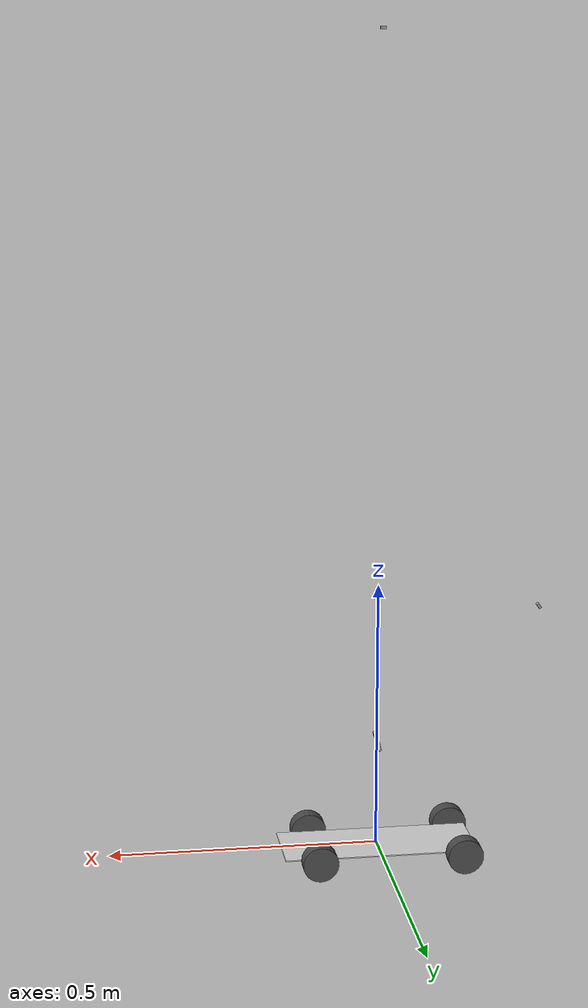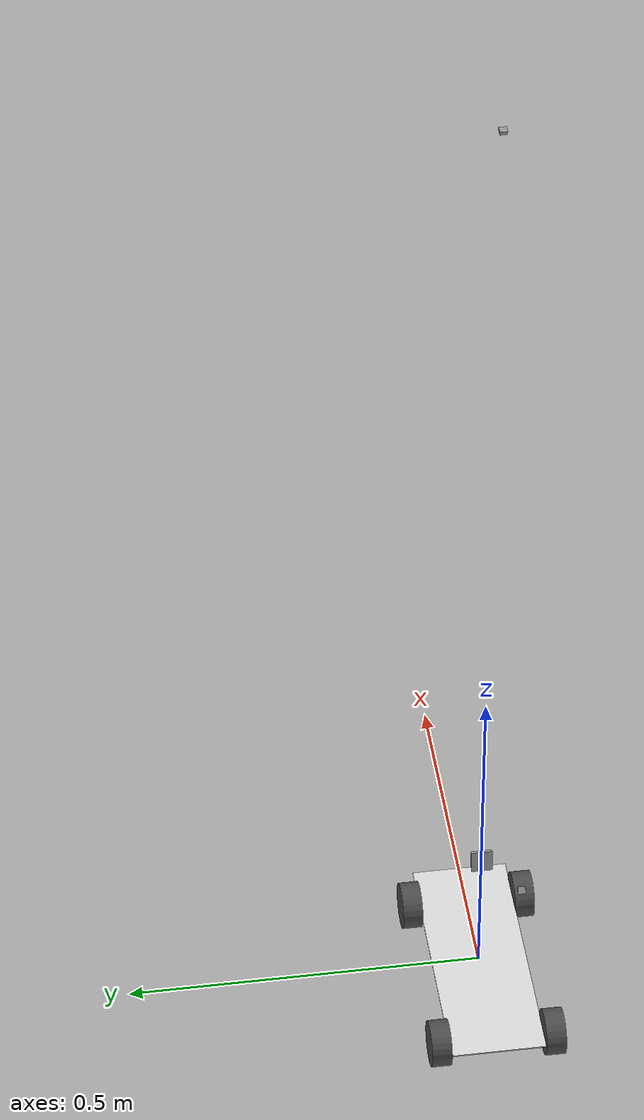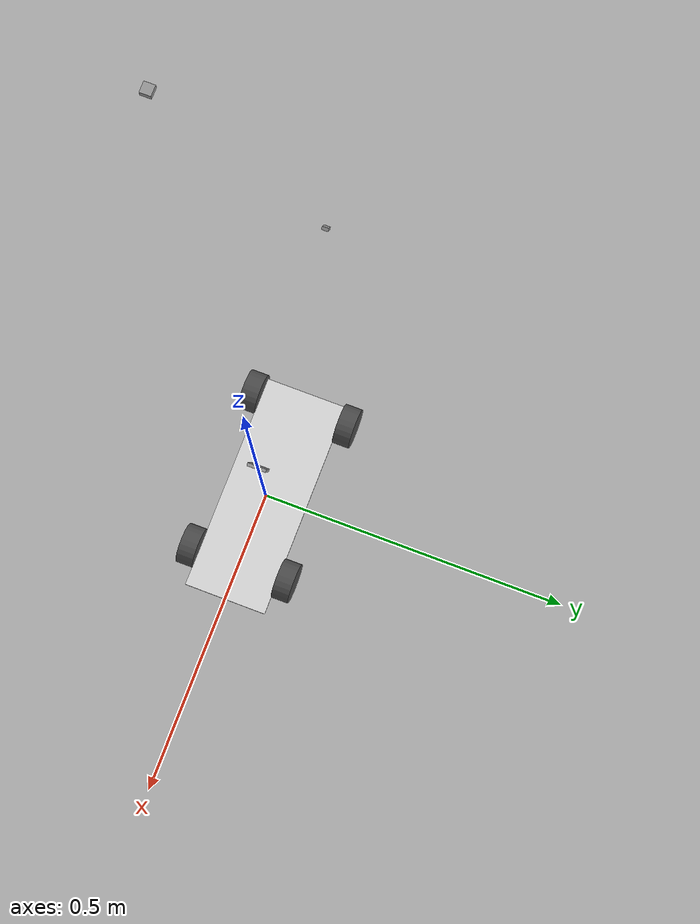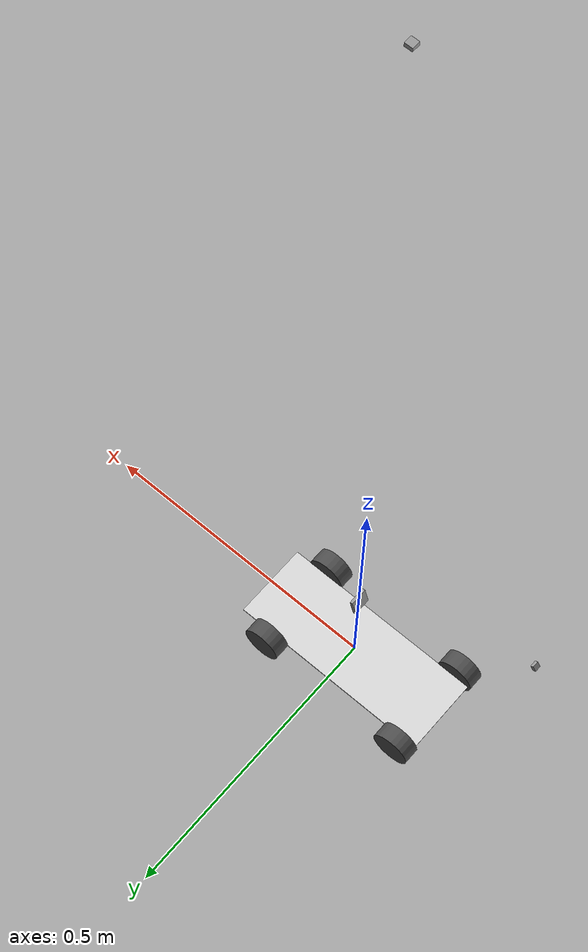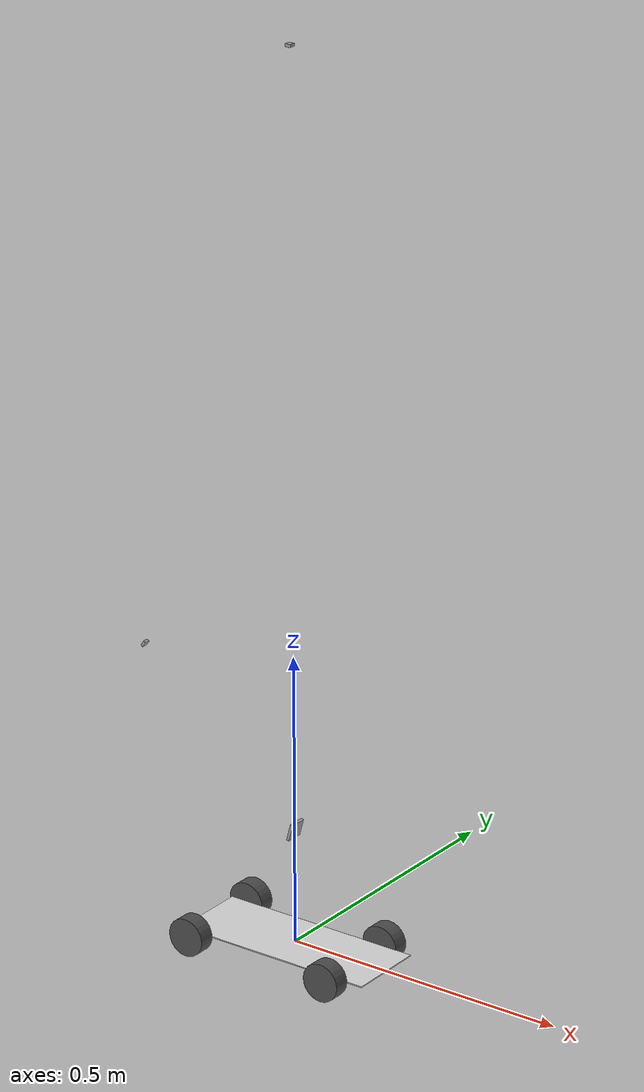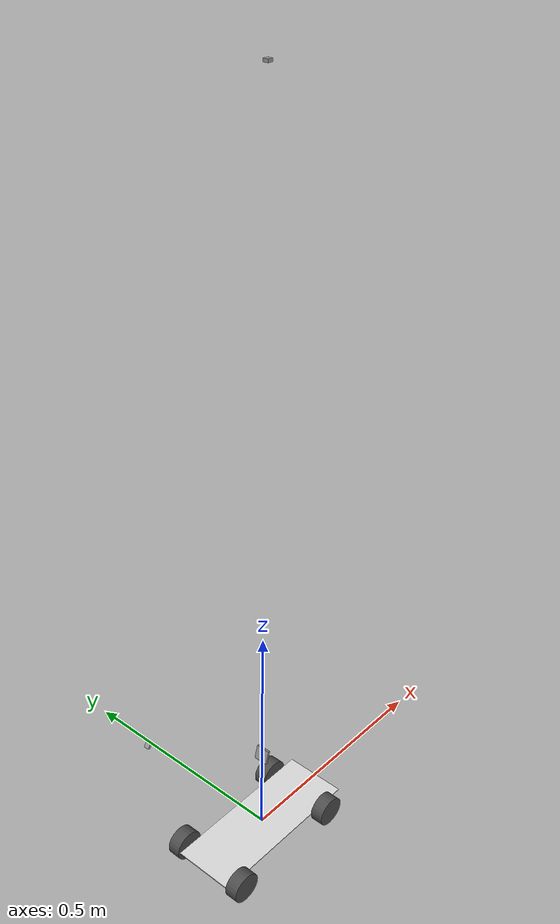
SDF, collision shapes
<?xml version='1.0'?>
<sdf version='1.7'>
  <model name='automobile'>
    <link name='chassis::link'>
      <inertial>
        <mass>0.26244</mass>
        <inertia>
          <ixx>0.00283444</ixx>
          <ixy>0</ixy>
          <ixz>0</ixz>
          <iyy>0.00039867</iyy>
          <iyz>0</iyz>
          <izz>0.00323293</izz>
        </inertia>
        <pose>0 0 0 0 -0 0</pose>
      </inertial>
      <pose>0 0 0 0 -0 1.5708</pose>
      <gravity>1</gravity>
      <kinematic>0</kinematic>
      <enable_wind>0</enable_wind>
      <self_collide>0</self_collide>
      <visual name='visual'>
        <pose>0 0 -0.0065 0 0 -1.57079</pose>
        <geometry>
          <mesh>
            <uri>model://chassis/meshes/chassisV5.dae</uri>
            <scale>1 1 1</scale>
          </mesh>
        </geometry>
        <material>
          <lighting>1</lighting>
          <shader type='vertex'>
            <normal_map>__default__</normal_map>
          </shader>
          <ambient>0.6 0.6 0.6 1</ambient>
          <diffuse>0.85 0.85 0.85 1</diffuse>
          <specular>0.6 0.6 0.6 1</specular>
          <emissive>0 0 0 1</emissive>
          <script>
            <name>ModelPreview_4::chassis::link::visual_MATERIAL_</name>
            <uri>__default__</uri>
          </script>
        </material>
        <transparency>0</transparency>
        <cast_shadows>1</cast_shadows>
      </visual>
      <collision name='collision'>
        <laser_retro>0</laser_retro>
        <max_contacts>10</max_contacts>
        <pose>0 0 0 0 -0 0</pose>
        <geometry>
          <box>
            <size>0.135 0.36 0.002</size>
          </box>
        </geometry>
        <surface>
          <friction>
            <ode>
              <mu>1</mu>
              <mu2>1</mu2>
              <fdir1>0 0 0</fdir1>
              <slip1>0</slip1>
              <slip2>0</slip2>
            </ode>
            <torsional>
              <coefficient>1</coefficient>
              <patch_radius>0</patch_radius>
              <surface_radius>0</surface_radius>
              <use_patch_radius>1</use_patch_radius>
              <ode>
                <slip>0</slip>
              </ode>
            </torsional>
          </friction>
          <bounce>
            <restitution_coefficient>0</restitution_coefficient>
            <threshold>1e+06</threshold>
          </bounce>
          <contact>
            <collide_without_contact>0</collide_without_contact>
            <collide_without_contact_bitmask>1</collide_without_contact_bitmask>
            <collide_bitmask>1</collide_bitmask>
            <ode>
              <soft_cfm>0</soft_cfm>
              <soft_erp>0.2</soft_erp>
              <kp>1e+13</kp>
              <kd>1</kd>
              <max_vel>0.01</max_vel>
              <min_depth>0</min_depth>
            </ode>
            <bullet>
              <split_impulse>1</split_impulse>
              <split_impulse_penetration_threshold>-0.01</split_impulse_penetration_threshold>
              <soft_cfm>0</soft_cfm>
              <soft_erp>0.2</soft_erp>
              <kp>1e+13</kp>
              <kd>1</kd>
            </bullet>
          </contact>
        </surface>
      </collision>
    </link>
    <link name='cam_birdeye_REC::link_camera'>
      <inertial>
        <mass>0.001</mass>
        <inertia>
          <ixx>4.1e-07</ixx>
          <ixy>0</ixy>
          <ixz>0</ixz>
          <iyy>7.9e-07</iyy>
          <iyz>0</iyz>
          <izz>4.1e-07</izz>
        </inertia>
        <pose>0 0 0 0 -0 0</pose>
      </inertial>
      <pose>0 0 1.5 0 1.57079 0</pose>
      <gravity>1</gravity>
      <self_collide>0</self_collide>
      <kinematic>0</kinematic>
      <enable_wind>0</enable_wind>
      <sensor name='camera1' type='camera'>
        <update_rate>30</update_rate>
        <camera name='head'>
          <horizontal_fov>2</horizontal_fov>
          <image>
            <width>640</width>
            <height>480</height>
            <format>R8G8B8</format>
          </image>
          <clip>
            <near>0.02</near>
            <far>100</far>
          </clip>
          <noise>
            <type>gaussian</type>
            <mean>0</mean>
            <stddev>0</stddev>
          </noise>
        </camera>
        <plugin name='camera_controller' filename='libgazebo_ros_camera.so'>
          <alwaysOn>1</alwaysOn>
          <updateRate>0.0</updateRate>
          <cameraName>/rcCar/camera_birdeye</cameraName>
          <imageTopicName>image_raw</imageTopicName>
          <cameraInfoTopicName>camera_info</cameraInfoTopicName>
          <frameName>cam_birdeye_REC::link_camera</frameName>
          <hackBaseline>0.0</hackBaseline>
          <distortionK1>0.0</distortionK1>
          <distortionK2>0.0</distortionK2>
          <distortionK3>0.0</distortionK3>
          <distortionT1>0.0</distortionT1>
          <distortionT2>0.0</distortionT2>
          <robotNamespace/>
        </plugin>
      </sensor>
      <visual name='visual'>
        <pose>0 0 0 0 -0 0</pose>
        <geometry>
          <box>
            <size>0.005 0.01 0.01</size>
          </box>
        </geometry>
        <material>
          <lighting>1</lighting>
          <script>
            <uri>file://media/materials/scripts/gazebo.material</uri>
            <name>Gazebo/Grey</name>
          </script>
          <shader type='vertex'>
            <normal_map>__default__</normal_map>
          </shader>
          <ambient>0.3 0.3 0.3 1</ambient>
          <diffuse>0.7 0.7 0.7 1</diffuse>
          <specular>0.01 0.01 0.01 1</specular>
          <emissive>0 0 0 1</emissive>
        </material>
        <transparency>0</transparency>
        <cast_shadows>1</cast_shadows>
      </visual>
      <collision name='collision'>
        <laser_retro>0</laser_retro>
        <max_contacts>10</max_contacts>
        <pose>0 0 0 0 -0 0</pose>
        <geometry>
          <box>
            <size>0.005 0.01 0.01</size>
          </box>
        </geometry>
        <surface>
          <friction>
            <ode>
              <mu>1</mu>
              <mu2>1</mu2>
              <fdir1>0 0 0</fdir1>
              <slip1>0</slip1>
              <slip2>0</slip2>
            </ode>
            <torsional>
              <coefficient>1</coefficient>
              <patch_radius>0</patch_radius>
              <surface_radius>0</surface_radius>
              <use_patch_radius>1</use_patch_radius>
              <ode>
                <slip>0</slip>
              </ode>
            </torsional>
          </friction>
          <bounce>
            <restitution_coefficient>0</restitution_coefficient>
            <threshold>1e+06</threshold>
          </bounce>
          <contact>
            <collide_without_contact>0</collide_without_contact>
            <collide_without_contact_bitmask>1</collide_without_contact_bitmask>
            <collide_bitmask>1</collide_bitmask>
            <ode>
              <soft_cfm>0</soft_cfm>
              <soft_erp>0.2</soft_erp>
              <kp>1e+13</kp>
              <kd>1</kd>
              <max_vel>0.01</max_vel>
              <min_depth>0</min_depth>
            </ode>
            <bullet>
              <split_impulse>1</split_impulse>
              <split_impulse_penetration_threshold>-0.01</split_impulse_penetration_threshold>
              <soft_cfm>0</soft_cfm>
              <soft_erp>0.2</soft_erp>
              <kp>1e+13</kp>
              <kd>1</kd>
            </bullet>
          </contact>
        </surface>
      </collision>
    </link>
    <link name='camera::link_camera'>
      <inertial>
        <mass>0.0052875</mass>
        <inertia>
          <ixx>4.1e-07</ixx>
          <ixy>0</ixy>
          <ixz>0</ixz>
          <iyy>7.9e-07</iyy>
          <iyz>0</iyz>
          <izz>4.1e-07</izz>
        </inertia>
        <pose>0 0 0 0 -0 0</pose>
      </inertial>
      <pose>0 0 0.2 0 0.2617 0</pose>
      <gravity>1</gravity>
      <self_collide>0</self_collide>
      <kinematic>0</kinematic>
      <enable_wind>0</enable_wind>
      <sensor name='camera1' type='camera'>
        <update_rate>30</update_rate>
        <camera name='head'>
          <horizontal_fov>1.08559</horizontal_fov>
          <image>
            <width>640</width>
            <height>480</height>
            <format>R8G8B8</format>
          </image>
          <clip>
            <near>0.02</near>
            <far>100</far>
          </clip>
          <noise>
            <type>gaussian</type>
            <mean>0</mean>
            <stddev>0</stddev>
          </noise>
        </camera>
        <plugin name='camera_controller' filename='libgazebo_ros_camera.so'>
          <alwaysOn>1</alwaysOn>
          <updateRate>0.0</updateRate>
          <imageTopicName>image_raw</imageTopicName>
          <cameraInfoTopicName>camera_info</cameraInfoTopicName>
          <frameName>camera::link_camera</frameName>
          <hackBaseline>0.0</hackBaseline>
          <distortionK1>0.0</distortionK1>
          <distortionK2>0.0</distortionK2>
          <distortionK3>0.0</distortionK3>
          <distortionT1>0.0</distortionT1>
          <distortionT2>0.0</distortionT2>
          <robotNamespace/>
        </plugin>
      </sensor>
      <visual name='visual'>
        <pose>0 0 0 0 -0 0</pose>
        <geometry>
          <box>
            <size>0.005 0.03 0.03</size>
          </box>
        </geometry>
        <material>
          <lighting>1</lighting>
          <script>
            <uri>file://media/materials/scripts/gazebo.material</uri>
            <name>Gazebo/Grey</name>
          </script>
          <shader type='vertex'>
            <normal_map>__default__</normal_map>
          </shader>
          <ambient>0.3 0.3 0.3 1</ambient>
          <diffuse>0.7 0.7 0.7 1</diffuse>
          <specular>0.01 0.01 0.01 1</specular>
          <emissive>0 0 0 1</emissive>
        </material>
        <transparency>0</transparency>
        <cast_shadows>1</cast_shadows>
      </visual>
      <collision name='collision'>
        <laser_retro>0</laser_retro>
        <max_contacts>10</max_contacts>
        <pose>0 0 0 0 -0 0</pose>
        <geometry>
          <box>
            <size>0.005 0.03 0.03</size>
          </box>
        </geometry>
        <surface>
          <friction>
            <ode>
              <mu>1</mu>
              <mu2>1</mu2>
              <fdir1>0 0 0</fdir1>
              <slip1>0</slip1>
              <slip2>0</slip2>
            </ode>
            <torsional>
              <coefficient>1</coefficient>
              <patch_radius>0</patch_radius>
              <surface_radius>0</surface_radius>
              <use_patch_radius>1</use_patch_radius>
              <ode>
                <slip>0</slip>
              </ode>
            </torsional>
          </friction>
          <bounce>
            <restitution_coefficient>0</restitution_coefficient>
            <threshold>1e+06</threshold>
          </bounce>
          <contact>
            <collide_without_contact>0</collide_without_contact>
            <collide_without_contact_bitmask>1</collide_without_contact_bitmask>
            <collide_bitmask>1</collide_bitmask>
            <ode>
              <soft_cfm>0</soft_cfm>
              <soft_erp>0.2</soft_erp>
              <kp>1e+13</kp>
              <kd>1</kd>
              <max_vel>0.01</max_vel>
              <min_depth>0</min_depth>
            </ode>
            <bullet>
              <split_impulse>1</split_impulse>
              <split_impulse_penetration_threshold>-0.01</split_impulse_penetration_threshold>
              <soft_cfm>0</soft_cfm>
              <soft_erp>0.2</soft_erp>
              <kp>1e+13</kp>
              <kd>1</kd>
            </bullet>
          </contact>
        </surface>
      </collision>
    </link>
    <link name='camera_follow::link_camera'>
      <inertial>
        <mass>0.001</mass>
        <inertia>
          <ixx>4.1e-07</ixx>
          <ixy>0</ixy>
          <ixz>0</ixz>
          <iyy>7.9e-07</iyy>
          <iyz>0</iyz>
          <izz>4.1e-07</izz>
        </inertia>
        <pose>0 0 0 0 -0 0</pose>
      </inertial>
      <pose>-0.3 0 0.45 0 0.6 0</pose>
      <gravity>1</gravity>
      <self_collide>0</self_collide>
      <kinematic>0</kinematic>
      <enable_wind>0</enable_wind>
      <sensor name='camera1' type='camera'>
        <update_rate>30</update_rate>
        <camera name='head'>
          <horizontal_fov>1.3708</horizontal_fov>
          <image>
            <width>1920</width>
            <height>1080</height>
            <format>R8G8B8</format>
          </image>
          <clip>
            <near>0.02</near>
            <far>100</far>
          </clip>
          <noise>
            <type>gaussian</type>
            <mean>0</mean>
            <stddev>0</stddev>
          </noise>
        </camera>
        <plugin name='camera_controller' filename='libgazebo_ros_camera.so'>
          <alwaysOn>1</alwaysOn>
          <updateRate>0.0</updateRate>
          <cameraName>/rcCar/camera_follow</cameraName>
          <imageTopicName>image_raw</imageTopicName>
          <cameraInfoTopicName>camera_info</cameraInfoTopicName>
          <frameName>camera_follow::link_camera</frameName>
          <hackBaseline>0.0</hackBaseline>
          <distortionK1>0.0</distortionK1>
          <distortionK2>0.0</distortionK2>
          <distortionK3>0.0</distortionK3>
          <distortionT1>0.0</distortionT1>
          <distortionT2>0.0</distortionT2>
          <robotNamespace/>
        </plugin>
      </sensor>
      <visual name='visual'>
        <pose>0 0 0 0 -0 0</pose>
        <geometry>
          <box>
            <size>0.005 0.01 0.01</size>
          </box>
        </geometry>
        <material>
          <lighting>1</lighting>
          <script>
            <uri>file://media/materials/scripts/gazebo.material</uri>
            <name>Gazebo/Grey</name>
          </script>
          <shader type='vertex'>
            <normal_map>__default__</normal_map>
          </shader>
          <ambient>0.3 0.3 0.3 1</ambient>
          <diffuse>0.7 0.7 0.7 1</diffuse>
          <specular>0.01 0.01 0.01 1</specular>
          <emissive>0 0 0 1</emissive>
        </material>
        <transparency>0</transparency>
        <cast_shadows>1</cast_shadows>
      </visual>
      <collision name='collision'>
        <laser_retro>0</laser_retro>
        <max_contacts>10</max_contacts>
        <pose>0 0 0 0 -0 0</pose>
        <geometry>
          <box>
            <size>0.005 0.01 0.01</size>
          </box>
        </geometry>
        <surface>
          <friction>
            <ode>
              <mu>1</mu>
              <mu2>1</mu2>
              <fdir1>0 0 0</fdir1>
              <slip1>0</slip1>
              <slip2>0</slip2>
            </ode>
            <torsional>
              <coefficient>1</coefficient>
              <patch_radius>0</patch_radius>
              <surface_radius>0</surface_radius>
              <use_patch_radius>1</use_patch_radius>
              <ode>
                <slip>0</slip>
              </ode>
            </torsional>
          </friction>
          <bounce>
            <restitution_coefficient>0</restitution_coefficient>
            <threshold>1e+06</threshold>
          </bounce>
          <contact>
            <collide_without_contact>0</collide_without_contact>
            <collide_without_contact_bitmask>1</collide_without_contact_bitmask>
            <collide_bitmask>1</collide_bitmask>
            <ode>
              <soft_cfm>0</soft_cfm>
              <soft_erp>0.2</soft_erp>
              <kp>1e+13</kp>
              <kd>1</kd>
              <max_vel>0.01</max_vel>
              <min_depth>0</min_depth>
            </ode>
            <bullet>
              <split_impulse>1</split_impulse>
              <split_impulse_penetration_threshold>-0.01</split_impulse_penetration_threshold>
              <soft_cfm>0</soft_cfm>
              <soft_erp>0.2</soft_erp>
              <kp>1e+13</kp>
              <kd>1</kd>
            </bullet>
          </contact>
        </surface>
      </collision>
    </link>
    <link name='car_body::link'>
      <inertial>
        <mass>1</mass>
        <inertia>
          <ixx>0.166667</ixx>
          <ixy>0</ixy>
          <ixz>0</ixz>
          <iyy>0.166667</iyy>
          <iyz>0</iyz>
          <izz>0.166667</izz>
        </inertia>
        <pose>0 0 0 0 -0 0</pose>
      </inertial>
      <pose>-0.024 0 -0.028 0 -0 0</pose>
      <self_collide>0</self_collide>
      <enable_wind>0</enable_wind>
      <kinematic>0</kinematic>
      <visual name='visual'>
        <pose>0 0 0 0 -0 0</pose>
        <geometry>
          <mesh>
            <uri>model://car_body/meshes/CarBody.dae</uri>
            <scale>1 1 1</scale>
          </mesh>
        </geometry>
        <material>
          <script>
            <uri>model://car_body/materials/scripts</uri>
            <uri>model://car_body/materials/textures</uri>
            <name>CarBody/Image</name>
          </script>
          <shader type='pixel'/>
        </material>
        <transparency>0</transparency>
        <cast_shadows>1</cast_shadows>
      </visual>
    </link>
    <link name='steer_left::link_steer'>
      <inertial>
        <mass>0.001</mass>
        <inertia>
          <ixx>0.00014583</ixx>
          <ixy>0</ixy>
          <ixz>0</ixz>
          <iyy>0.00014583</iyy>
          <iyz>0</iyz>
          <izz>0.000125</izz>
        </inertia>
        <pose>0 0 0 0 -0 0</pose>
      </inertial>
      <pose>0.112 0.0725 0 1.5708 -0 0</pose>
      <gravity>1</gravity>
      <self_collide>0</self_collide>
      <kinematic>0</kinematic>
      <enable_wind>0</enable_wind>
      <visual name='visual'>
        <pose>0 0 0 0 -0 0</pose>
        <geometry>
          <cylinder>
            <radius>0.001</radius>
            <length>0.01</length>
          </cylinder>
        </geometry>
        <material>
          <lighting>1</lighting>
          <script>
            <uri>file://media/materials/scripts/gazebo.material</uri>
            <name>Gazebo/Grey</name>
          </script>
          <shader type='vertex'>
            <normal_map>__default__</normal_map>
          </shader>
          <ambient>0.3 0.3 0.3 1</ambient>
          <diffuse>0.7 0.7 0.7 1</diffuse>
          <specular>0.01 0.01 0.01 1</specular>
          <emissive>0 0 0 1</emissive>
        </material>
        <transparency>0</transparency>
        <cast_shadows>1</cast_shadows>
      </visual>
      <collision name='collision'>
        <laser_retro>0</laser_retro>
        <max_contacts>10</max_contacts>
        <pose>0 0 0 0 -0 0</pose>
        <geometry>
          <cylinder>
            <radius>0.001</radius>
            <length>0.01</length>
          </cylinder>
        </geometry>
        <surface>
          <friction>
            <ode>
              <mu>1</mu>
              <mu2>1</mu2>
              <fdir1>0 0 0</fdir1>
              <slip1>0</slip1>
              <slip2>0</slip2>
            </ode>
            <torsional>
              <coefficient>1</coefficient>
              <patch_radius>0</patch_radius>
              <surface_radius>0</surface_radius>
              <use_patch_radius>1</use_patch_radius>
              <ode>
                <slip>0</slip>
              </ode>
            </torsional>
          </friction>
          <bounce>
            <restitution_coefficient>0</restitution_coefficient>
            <threshold>1e+06</threshold>
          </bounce>
          <contact>
            <collide_without_contact>0</collide_without_contact>
            <collide_without_contact_bitmask>1</collide_without_contact_bitmask>
            <collide_bitmask>1</collide_bitmask>
            <ode>
              <soft_cfm>0</soft_cfm>
              <soft_erp>0.2</soft_erp>
              <kp>1e+13</kp>
              <kd>1</kd>
              <max_vel>0.01</max_vel>
              <min_depth>0</min_depth>
            </ode>
            <bullet>
              <split_impulse>1</split_impulse>
              <split_impulse_penetration_threshold>-0.01</split_impulse_penetration_threshold>
              <soft_cfm>0</soft_cfm>
              <soft_erp>0.2</soft_erp>
              <kp>1e+13</kp>
              <kd>1</kd>
            </bullet>
          </contact>
        </surface>
      </collision>
    </link>
    <link name='steer_right::link_steer'>
      <inertial>
        <mass>0.001</mass>
        <inertia>
          <ixx>0.00014583</ixx>
          <ixy>0</ixy>
          <ixz>0</ixz>
          <iyy>0.00014583</iyy>
          <iyz>0</iyz>
          <izz>0.000125</izz>
        </inertia>
        <pose>0 0 0 0 -0 0</pose>
      </inertial>
      <pose>0.112 -0.0725 0 1.5708 -0 0</pose>
      <gravity>1</gravity>
      <self_collide>0</self_collide>
      <kinematic>0</kinematic>
      <enable_wind>0</enable_wind>
      <visual name='visual'>
        <pose>0 0 0 0 -0 0</pose>
        <geometry>
          <cylinder>
            <radius>0.001</radius>
            <length>0.01</length>
          </cylinder>
        </geometry>
        <material>
          <lighting>1</lighting>
          <script>
            <uri>file://media/materials/scripts/gazebo.material</uri>
            <name>Gazebo/Grey</name>
          </script>
          <shader type='vertex'>
            <normal_map>__default__</normal_map>
          </shader>
          <ambient>0.3 0.3 0.3 1</ambient>
          <diffuse>0.7 0.7 0.7 1</diffuse>
          <specular>0.01 0.01 0.01 1</specular>
          <emissive>0 0 0 1</emissive>
        </material>
        <transparency>0</transparency>
        <cast_shadows>1</cast_shadows>
      </visual>
      <collision name='collision'>
        <laser_retro>0</laser_retro>
        <max_contacts>10</max_contacts>
        <pose>0 0 0 0 -0 0</pose>
        <geometry>
          <cylinder>
            <radius>0.001</radius>
            <length>0.01</length>
          </cylinder>
        </geometry>
        <surface>
          <friction>
            <ode>
              <mu>1</mu>
              <mu2>1</mu2>
              <fdir1>0 0 0</fdir1>
              <slip1>0</slip1>
              <slip2>0</slip2>
            </ode>
            <torsional>
              <coefficient>1</coefficient>
              <patch_radius>0</patch_radius>
              <surface_radius>0</surface_radius>
              <use_patch_radius>1</use_patch_radius>
              <ode>
                <slip>0</slip>
              </ode>
            </torsional>
          </friction>
          <bounce>
            <restitution_coefficient>0</restitution_coefficient>
            <threshold>1e+06</threshold>
          </bounce>
          <contact>
            <collide_without_contact>0</collide_without_contact>
            <collide_without_contact_bitmask>1</collide_without_contact_bitmask>
            <collide_bitmask>1</collide_bitmask>
            <ode>
              <soft_cfm>0</soft_cfm>
              <soft_erp>0.2</soft_erp>
              <kp>1e+13</kp>
              <kd>1</kd>
              <max_vel>0.01</max_vel>
              <min_depth>0</min_depth>
            </ode>
            <bullet>
              <split_impulse>1</split_impulse>
              <split_impulse_penetration_threshold>-0.01</split_impulse_penetration_threshold>
              <soft_cfm>0</soft_cfm>
              <soft_erp>0.2</soft_erp>
              <kp>1e+13</kp>
              <kd>1</kd>
            </bullet>
          </contact>
        </surface>
      </collision>
    </link>
    <link name='wheel_front_left::link_rim'>
      <inertial>
        <mass>0.038</mass>
        <inertia>
          <ixx>1.283e-05</ixx>
          <ixy>0</ixy>
          <ixz>0</ixz>
          <iyy>1.283e-05</iyy>
          <iyz>0</iyz>
          <izz>2.069e-05</izz>
        </inertia>
        <pose>0 0 0 0 -0 0</pose>
      </inertial>
      <pose>0.118 0.081 0 1.5708 -0 0</pose>
      <gravity>1</gravity>
      <kinematic>0</kinematic>
      <enable_wind>0</enable_wind>
      <self_collide>0</self_collide>
      <visual name='visual'>
        <pose>0 0 0 -1.5708 0 0</pose>
        <geometry>
          <mesh>
            <uri>model://wheel_left/meshes/rim.dae</uri>
            <scale>1 1 1</scale>
          </mesh>
        </geometry>
        <material>
          <lighting>1</lighting>
          <shader type='vertex'>
            <normal_map>__default__</normal_map>
          </shader>
          <ambient>0.2 0.2 0.2 1</ambient>
          <diffuse>0.3 0.3 0.3 1</diffuse>
          <specular>0.5 0.5 0.5 1</specular>
          <emissive>0 0 0 0</emissive>
          <script>
            <name>ModelPreview_4::wheel_front_left::link_rim::visual_MATERIAL_</name>
            <uri>__default__</uri>
          </script>
        </material>
        <transparency>0</transparency>
        <cast_shadows>1</cast_shadows>
      </visual>
      <collision name='collision'>
        <laser_retro>0</laser_retro>
        <max_contacts>10</max_contacts>
        <pose>0 0 0 0 -0 0</pose>
        <geometry>
          <cylinder>
            <radius>0.033</radius>
            <length>0.028</length>
          </cylinder>
        </geometry>
        <surface>
          <friction>
            <ode>
              <mu>0.7</mu>
              <mu2>0.7</mu2>
              <fdir1>0 0 0</fdir1>
              <slip1>0</slip1>
              <slip2>0</slip2>
            </ode>
            <torsional>
              <coefficient>1</coefficient>
              <patch_radius>0</patch_radius>
              <surface_radius>0</surface_radius>
              <use_patch_radius>1</use_patch_radius>
              <ode>
                <slip>0</slip>
              </ode>
            </torsional>
          </friction>
          <bounce>
            <restitution_coefficient>0</restitution_coefficient>
            <threshold>1e+06</threshold>
          </bounce>
          <contact>
            <collide_without_contact>0</collide_without_contact>
            <collide_without_contact_bitmask>1</collide_without_contact_bitmask>
            <collide_bitmask>1</collide_bitmask>
            <ode>
              <soft_cfm>0</soft_cfm>
              <soft_erp>0.2</soft_erp>
              <kp>1e+07</kp>
              <kd>1</kd>
              <max_vel>0.01</max_vel>
              <min_depth>0</min_depth>
            </ode>
            <bullet>
              <split_impulse>1</split_impulse>
              <split_impulse_penetration_threshold>-0.01</split_impulse_penetration_threshold>
              <soft_cfm>0</soft_cfm>
              <soft_erp>0.2</soft_erp>
              <kp>1e+07</kp>
              <kd>1</kd>
            </bullet>
          </contact>
        </surface>
      </collision>
    </link>
    <link name='wheel_front_right::link_rim'>
      <inertial>
        <mass>0.038</mass>
        <inertia>
          <ixx>1.283e-05</ixx>
          <ixy>0</ixy>
          <ixz>0</ixz>
          <iyy>1.283e-05</iyy>
          <iyz>0</iyz>
          <izz>2.069e-05</izz>
        </inertia>
        <pose>0 0 0 0 -0 0</pose>
      </inertial>
      <pose>0.118 -0.081 0 1.5708 -0 0</pose>
      <gravity>1</gravity>
      <kinematic>0</kinematic>
      <enable_wind>0</enable_wind>
      <self_collide>0</self_collide>
      <visual name='visual'>
        <pose>0 0 0 -1.5708 0 0</pose>
        <geometry>
          <mesh>
            <uri>model://wheel_right/meshes/rim.dae</uri>
            <scale>1 1 1</scale>
          </mesh>
        </geometry>
        <material>
          <lighting>1</lighting>
          <shader type='vertex'>
            <normal_map>__default__</normal_map>
          </shader>
          <ambient>0.2 0.2 0.2 1</ambient>
          <diffuse>0.3 0.3 0.3 1</diffuse>
          <specular>0.5 0.5 0.5 1</specular>
          <emissive>0 0 0 0</emissive>
          <script>
            <name>ModelPreview_4::wheel_front_right::link_rim::visual_MATERIAL_</name>
            <uri>__default__</uri>
          </script>
        </material>
        <transparency>0</transparency>
        <cast_shadows>1</cast_shadows>
      </visual>
      <collision name='collision'>
        <laser_retro>0</laser_retro>
        <max_contacts>10</max_contacts>
        <pose>0 0 0 0 -0 0</pose>
        <geometry>
          <cylinder>
            <radius>0.033</radius>
            <length>0.028</length>
          </cylinder>
        </geometry>
        <surface>
          <friction>
            <ode>
              <mu>0.7</mu>
              <mu2>0.7</mu2>
              <fdir1>0 0 0</fdir1>
              <slip1>0</slip1>
              <slip2>0</slip2>
            </ode>
            <torsional>
              <coefficient>1</coefficient>
              <patch_radius>0</patch_radius>
              <surface_radius>0</surface_radius>
              <use_patch_radius>1</use_patch_radius>
              <ode>
                <slip>0</slip>
              </ode>
            </torsional>
          </friction>
          <bounce>
            <restitution_coefficient>0</restitution_coefficient>
            <threshold>1e+06</threshold>
          </bounce>
          <contact>
            <collide_without_contact>0</collide_without_contact>
            <collide_without_contact_bitmask>1</collide_without_contact_bitmask>
            <collide_bitmask>1</collide_bitmask>
            <ode>
              <soft_cfm>0</soft_cfm>
              <soft_erp>0.2</soft_erp>
              <kp>1e+07</kp>
              <kd>1</kd>
              <max_vel>0.01</max_vel>
              <min_depth>0</min_depth>
            </ode>
            <bullet>
              <split_impulse>1</split_impulse>
              <split_impulse_penetration_threshold>-0.01</split_impulse_penetration_threshold>
              <soft_cfm>0</soft_cfm>
              <soft_erp>0.2</soft_erp>
              <kp>1e+07</kp>
              <kd>1</kd>
            </bullet>
          </contact>
        </surface>
      </collision>
    </link>
    <link name='wheel_rear_left::link_rim'>
      <inertial>
        <mass>0.038</mass>
        <inertia>
          <ixx>1.283e-05</ixx>
          <ixy>0</ixy>
          <ixz>0</ixz>
          <iyy>1.283e-05</iyy>
          <iyz>0</iyz>
          <izz>2.069e-05</izz>
        </inertia>
        <pose>0 0 0 0 -0 0</pose>
      </inertial>
      <pose>-0.152 0.081 0 1.5708 -0 0</pose>
      <gravity>1</gravity>
      <kinematic>0</kinematic>
      <enable_wind>0</enable_wind>
      <self_collide>0</self_collide>
      <visual name='visual'>
        <pose>0 0 0 -1.5708 0 0</pose>
        <geometry>
          <mesh>
            <uri>model://wheel_left/meshes/rim.dae</uri>
            <scale>1 1 1</scale>
          </mesh>
        </geometry>
        <material>
          <lighting>1</lighting>
          <shader type='vertex'>
            <normal_map>__default__</normal_map>
          </shader>
          <ambient>0.2 0.2 0.2 1</ambient>
          <diffuse>0.3 0.3 0.3 1</diffuse>
          <specular>0.5 0.5 0.5 1</specular>
          <emissive>0 0 0 0</emissive>
          <script>
            <name>ModelPreview_4::wheel_rear_left::link_rim::visual_MATERIAL_</name>
            <uri>__default__</uri>
          </script>
        </material>
        <transparency>0</transparency>
        <cast_shadows>1</cast_shadows>
      </visual>
      <collision name='collision'>
        <laser_retro>0</laser_retro>
        <max_contacts>10</max_contacts>
        <pose>0 0 0 0 -0 0</pose>
        <geometry>
          <cylinder>
            <radius>0.033</radius>
            <length>0.028</length>
          </cylinder>
        </geometry>
        <surface>
          <friction>
            <ode>
              <mu>0.7</mu>
              <mu2>0.7</mu2>
              <fdir1>0 0 0</fdir1>
              <slip1>0</slip1>
              <slip2>0</slip2>
            </ode>
            <torsional>
              <coefficient>1</coefficient>
              <patch_radius>0</patch_radius>
              <surface_radius>0</surface_radius>
              <use_patch_radius>1</use_patch_radius>
              <ode>
                <slip>0</slip>
              </ode>
            </torsional>
          </friction>
          <bounce>
            <restitution_coefficient>0</restitution_coefficient>
            <threshold>1e+06</threshold>
          </bounce>
          <contact>
            <collide_without_contact>0</collide_without_contact>
            <collide_without_contact_bitmask>1</collide_without_contact_bitmask>
            <collide_bitmask>1</collide_bitmask>
            <ode>
              <soft_cfm>0</soft_cfm>
              <soft_erp>0.2</soft_erp>
              <kp>1e+07</kp>
              <kd>1</kd>
              <max_vel>0.01</max_vel>
              <min_depth>0</min_depth>
            </ode>
            <bullet>
              <split_impulse>1</split_impulse>
              <split_impulse_penetration_threshold>-0.01</split_impulse_penetration_threshold>
              <soft_cfm>0</soft_cfm>
              <soft_erp>0.2</soft_erp>
              <kp>1e+07</kp>
              <kd>1</kd>
            </bullet>
          </contact>
        </surface>
      </collision>
    </link>
    <link name='wheel_rear_right::link_rim'>
      <inertial>
        <mass>0.038</mass>
        <inertia>
          <ixx>1.283e-05</ixx>
          <ixy>0</ixy>
          <ixz>0</ixz>
          <iyy>1.283e-05</iyy>
          <iyz>0</iyz>
          <izz>2.069e-05</izz>
        </inertia>
        <pose>0 0 0 0 -0 0</pose>
      </inertial>
      <pose>-0.152 -0.081 0 1.5708 -0 0</pose>
      <gravity>1</gravity>
      <kinematic>0</kinematic>
      <enable_wind>0</enable_wind>
      <self_collide>0</self_collide>
      <visual name='visual'>
        <pose>0 0 0 -1.5708 0 0</pose>
        <geometry>
          <mesh>
            <uri>model://wheel_right/meshes/rim.dae</uri>
            <scale>1 1 1</scale>
          </mesh>
        </geometry>
        <material>
          <lighting>1</lighting>
          <shader type='vertex'>
            <normal_map>__default__</normal_map>
          </shader>
          <ambient>0.2 0.2 0.2 1</ambient>
          <diffuse>0.3 0.3 0.3 1</diffuse>
          <specular>0.5 0.5 0.5 1</specular>
          <emissive>0 0 0 0</emissive>
          <script>
            <name>ModelPreview_4::wheel_rear_right::link_rim::visual_MATERIAL_</name>
            <uri>__default__</uri>
          </script>
        </material>
        <transparency>0</transparency>
        <cast_shadows>1</cast_shadows>
      </visual>
      <collision name='collision'>
        <laser_retro>0</laser_retro>
        <max_contacts>10</max_contacts>
        <pose>0 0 0 0 -0 0</pose>
        <geometry>
          <cylinder>
            <radius>0.033</radius>
            <length>0.028</length>
          </cylinder>
        </geometry>
        <surface>
          <friction>
            <ode>
              <mu>0.7</mu>
              <mu2>0.7</mu2>
              <fdir1>0 0 0</fdir1>
              <slip1>0</slip1>
              <slip2>0</slip2>
            </ode>
            <torsional>
              <coefficient>1</coefficient>
              <patch_radius>0</patch_radius>
              <surface_radius>0</surface_radius>
              <use_patch_radius>1</use_patch_radius>
              <ode>
                <slip>0</slip>
              </ode>
            </torsional>
          </friction>
          <bounce>
            <restitution_coefficient>0</restitution_coefficient>
            <threshold>1e+06</threshold>
          </bounce>
          <contact>
            <collide_without_contact>0</collide_without_contact>
            <collide_without_contact_bitmask>1</collide_without_contact_bitmask>
            <collide_bitmask>1</collide_bitmask>
            <ode>
              <soft_cfm>0</soft_cfm>
              <soft_erp>0.2</soft_erp>
              <kp>1e+07</kp>
              <kd>1</kd>
              <max_vel>0.01</max_vel>
              <min_depth>0</min_depth>
            </ode>
            <bullet>
              <split_impulse>1</split_impulse>
              <split_impulse_penetration_threshold>-0.01</split_impulse_penetration_threshold>
              <soft_cfm>0</soft_cfm>
              <soft_erp>0.2</soft_erp>
              <kp>1e+07</kp>
              <kd>1</kd>
            </bullet>
          </contact>
        </surface>
      </collision>
    </link>
    <joint name='joint_body' type='fixed'>
      <parent>chassis::link</parent>
      <child>car_body::link</child>
      <pose>0 0 0 0 -0 0</pose>
      <physics>
        <ode>
          <limit>
            <cfm>0</cfm>
            <erp>0.2</erp>
          </limit>
          <suspension>
            <cfm>0</cfm>
            <erp>0.2</erp>
          </suspension>
        </ode>
      </physics>
    </joint>
    <joint name='joint_cam_birdeye_REC' type='fixed'>
      <parent>chassis::link</parent>
      <child>cam_birdeye_REC::link_camera</child>
      <pose>0 0 0 0 -0 0</pose>
      <physics>
        <ode>
          <limit>
            <cfm>0</cfm>
            <erp>0.2</erp>
          </limit>
          <suspension>
            <cfm>0</cfm>
            <erp>0.2</erp>
          </suspension>
        </ode>
      </physics>
    </joint>
    <joint name='joint_camera' type='fixed'>
      <parent>chassis::link</parent>
      <child>camera::link_camera</child>
      <pose>0 0 0 0 -0 0</pose>
      <physics>
        <ode>
          <limit>
            <cfm>0</cfm>
            <erp>0.2</erp>
          </limit>
          <suspension>
            <cfm>0</cfm>
            <erp>0.2</erp>
          </suspension>
        </ode>
      </physics>
    </joint>
    <joint name='joint_camera_follow' type='fixed'>
      <parent>chassis::link</parent>
      <child>camera_follow::link_camera</child>
      <pose>0 0 0 0 -0 0</pose>
      <physics>
        <ode>
          <limit>
            <cfm>0</cfm>
            <erp>0.2</erp>
          </limit>
          <suspension>
            <cfm>0</cfm>
            <erp>0.2</erp>
          </suspension>
        </ode>
      </physics>
    </joint>
    <joint name='joint_leftfront_rim' type='revolute'>
      <parent>steer_left::link_steer</parent>
      <child>wheel_front_left::link_rim</child>
      <pose>0 0 0 0 -0 0</pose>
      <axis>
        <xyz>0 0 -1</xyz>
        <limit>
          <lower>-1.79769e+308</lower>
          <upper>1.79769e+308</upper>
          <effort>-1</effort>
          <velocity>-1</velocity>
        </limit>
        <dynamics>
          <spring_reference>0</spring_reference>
          <spring_stiffness>0</spring_stiffness>
          <damping>0</damping>
          <friction>0</friction>
        </dynamics>
      </axis>
      <physics>
        <ode>
          <limit>
            <cfm>0</cfm>
            <erp>0.2</erp>
          </limit>
          <suspension>
            <cfm>0</cfm>
            <erp>0.2</erp>
          </suspension>
        </ode>
      </physics>
    </joint>
    <joint name='joint_leftfront_steer' type='revolute'>
      <parent>chassis::link</parent>
      <child>steer_left::link_steer</child>
      <pose>0 0 0.005 0 -0 0</pose>
      <axis>
        <xyz>0 1 0</xyz>
        <limit>
          <lower>-1.79769e+308</lower>
          <upper>1.79769e+308</upper>
          <effort>-1</effort>
          <velocity>-1</velocity>
        </limit>
        <dynamics>
          <spring_reference>0</spring_reference>
          <spring_stiffness>0</spring_stiffness>
          <damping>0</damping>
          <friction>0</friction>
        </dynamics>
      </axis>
      <physics>
        <ode>
          <limit>
            <cfm>0</cfm>
            <erp>0.2</erp>
          </limit>
          <suspension>
            <cfm>0</cfm>
            <erp>0.2</erp>
          </suspension>
        </ode>
      </physics>
    </joint>
    <joint name='joint_leftrear_rim' type='revolute'>
      <parent>chassis::link</parent>
      <child>wheel_rear_left::link_rim</child>
      <pose>0 0 0 0 -0 0</pose>
      <axis>
        <xyz>0 0 -1</xyz>
        <limit>
          <lower>-1.79769e+308</lower>
          <upper>1.79769e+308</upper>
          <effort>-1</effort>
          <velocity>-1</velocity>
        </limit>
        <dynamics>
          <spring_reference>0</spring_reference>
          <spring_stiffness>0</spring_stiffness>
          <damping>0</damping>
          <friction>0</friction>
        </dynamics>
      </axis>
      <physics>
        <ode>
          <limit>
            <cfm>0</cfm>
            <erp>0.2</erp>
          </limit>
          <suspension>
            <cfm>0</cfm>
            <erp>0.2</erp>
          </suspension>
        </ode>
      </physics>
    </joint>
    <joint name='joint_rightfront_rim' type='revolute'>
      <parent>steer_right::link_steer</parent>
      <child>wheel_front_right::link_rim</child>
      <pose>0 0 0 0 -0 0</pose>
      <axis>
        <xyz>0 0 -1</xyz>
        <limit>
          <lower>-1.79769e+308</lower>
          <upper>1.79769e+308</upper>
          <effort>-1</effort>
          <velocity>-1</velocity>
        </limit>
        <dynamics>
          <spring_reference>0</spring_reference>
          <spring_stiffness>0</spring_stiffness>
          <damping>0</damping>
          <friction>0</friction>
        </dynamics>
      </axis>
      <physics>
        <ode>
          <limit>
            <cfm>0</cfm>
            <erp>0.2</erp>
          </limit>
          <suspension>
            <cfm>0</cfm>
            <erp>0.2</erp>
          </suspension>
        </ode>
      </physics>
    </joint>
    <joint name='joint_rightfront_steer' type='revolute'>
      <parent>chassis::link</parent>
      <child>steer_right::link_steer</child>
      <pose>0 0 -0.005 0 -0 0</pose>
      <axis>
        <xyz>0 1 0</xyz>
        <limit>
          <lower>-1.79769e+308</lower>
          <upper>1.79769e+308</upper>
          <effort>-1</effort>
          <velocity>-1</velocity>
        </limit>
        <dynamics>
          <spring_reference>0</spring_reference>
          <spring_stiffness>0</spring_stiffness>
          <damping>0</damping>
          <friction>0</friction>
        </dynamics>
      </axis>
      <physics>
        <ode>
          <limit>
            <cfm>0</cfm>
            <erp>0.2</erp>
          </limit>
          <suspension>
            <cfm>0</cfm>
            <erp>0.2</erp>
          </suspension>
        </ode>
      </physics>
    </joint>
    <joint name='joint_rightrear_rim' type='revolute'>
      <parent>chassis::link</parent>
      <child>wheel_rear_right::link_rim</child>
      <pose>0 0 0 0 -0 0</pose>
      <axis>
        <xyz>0 0 -1</xyz>
        <limit>
          <lower>-1.79769e+308</lower>
          <upper>1.79769e+308</upper>
          <effort>-1</effort>
          <velocity>-1</velocity>
        </limit>
        <dynamics>
          <spring_reference>0</spring_reference>
          <spring_stiffness>0</spring_stiffness>
          <damping>0</damping>
          <friction>0</friction>
        </dynamics>
      </axis>
      <physics>
        <ode>
          <limit>
            <cfm>0</cfm>
            <erp>0.2</erp>
          </limit>
          <suspension>
            <cfm>0</cfm>
            <erp>0.2</erp>
          </suspension>
        </ode>
      </physics>
    </joint>
    <static>0</static>
    <allow_auto_disable>1</allow_auto_disable>
    <plugin name='omni_steering' filename='libgazebo_ros_planar_move.so'>
      <commandTopic>cmd_vel</commandTopic>
      <odometryTopic>odom</odometryTopic>
      <odometryFrame>odom</odometryFrame>
      <odometryRate>100</odometryRate>
      <robotBaseFrame>chassis</robotBaseFrame>
      <publishTF>0</publishTF>
    </plugin>
  </model>
</sdf>
